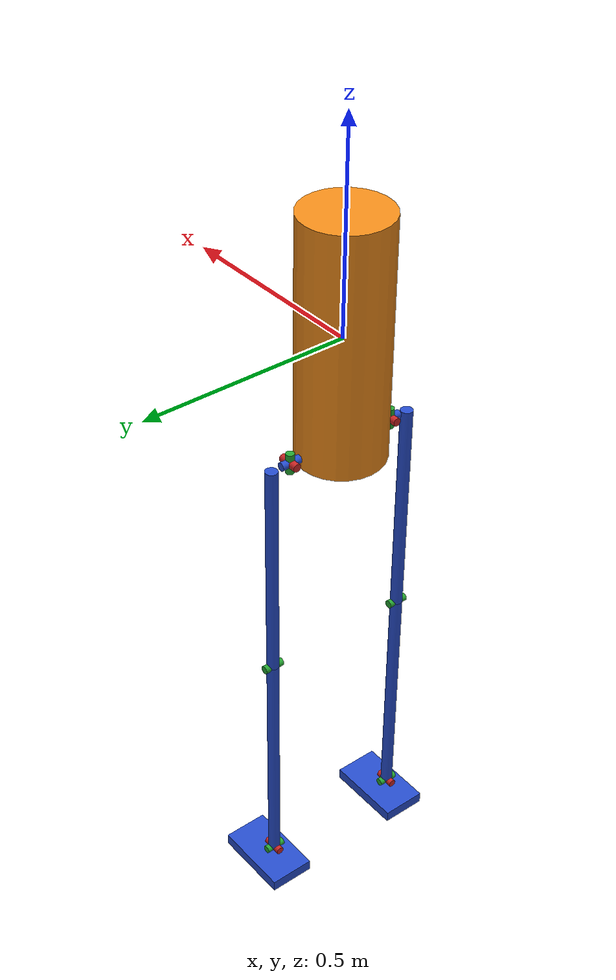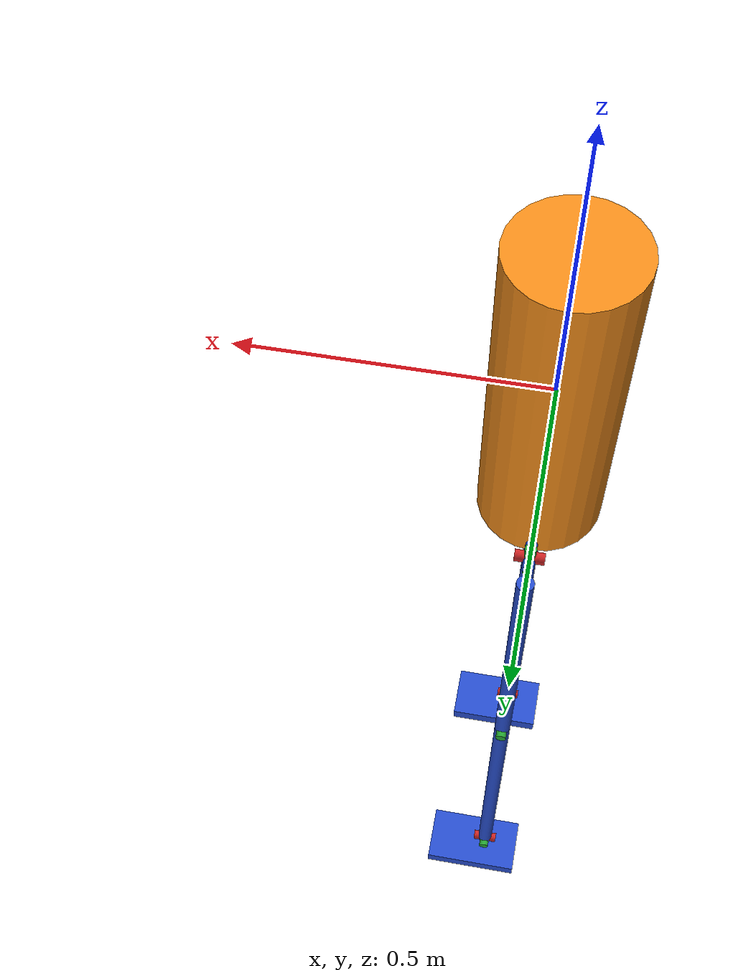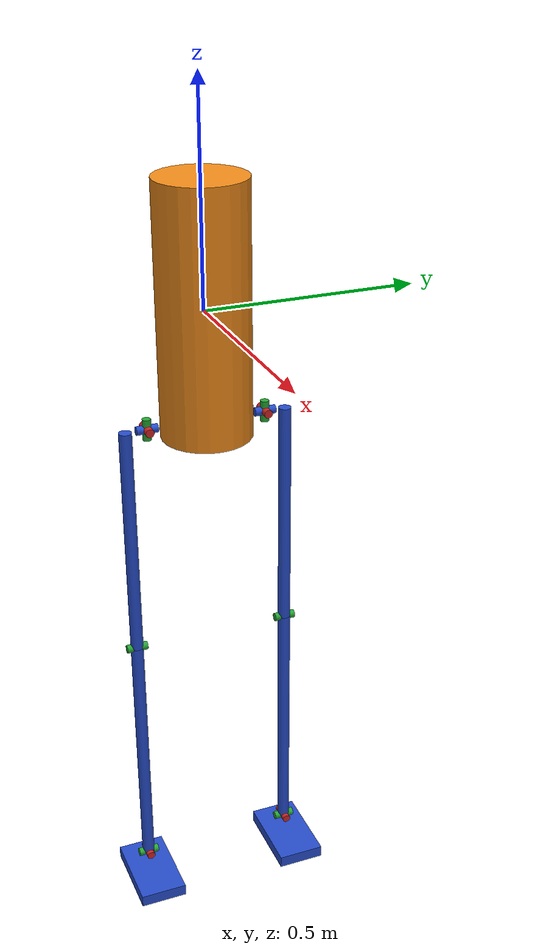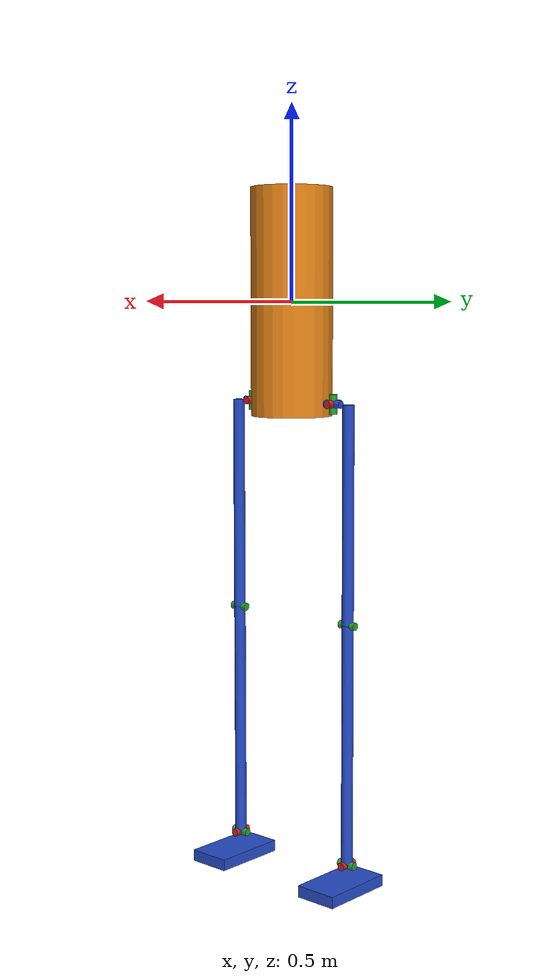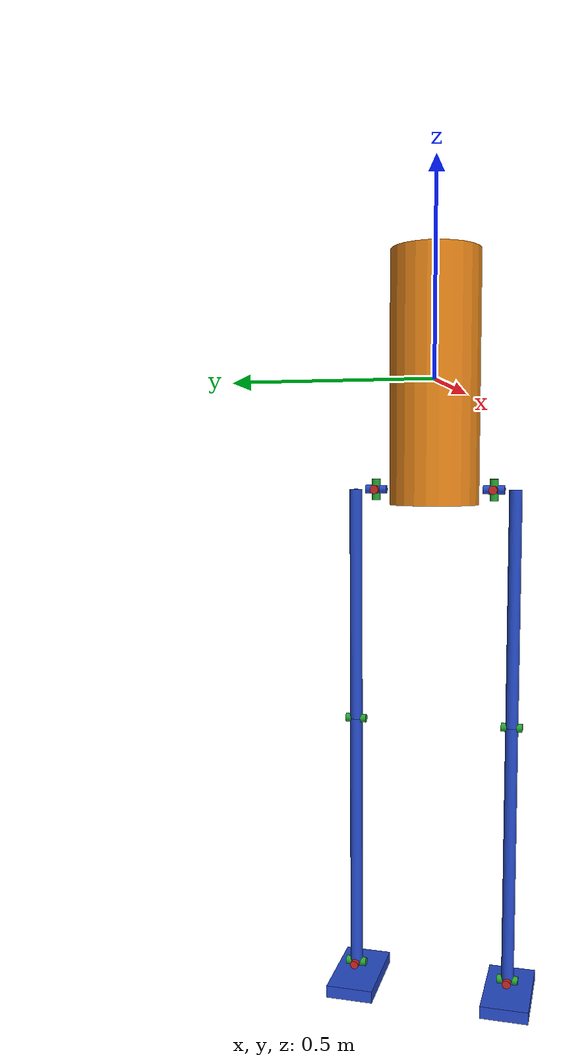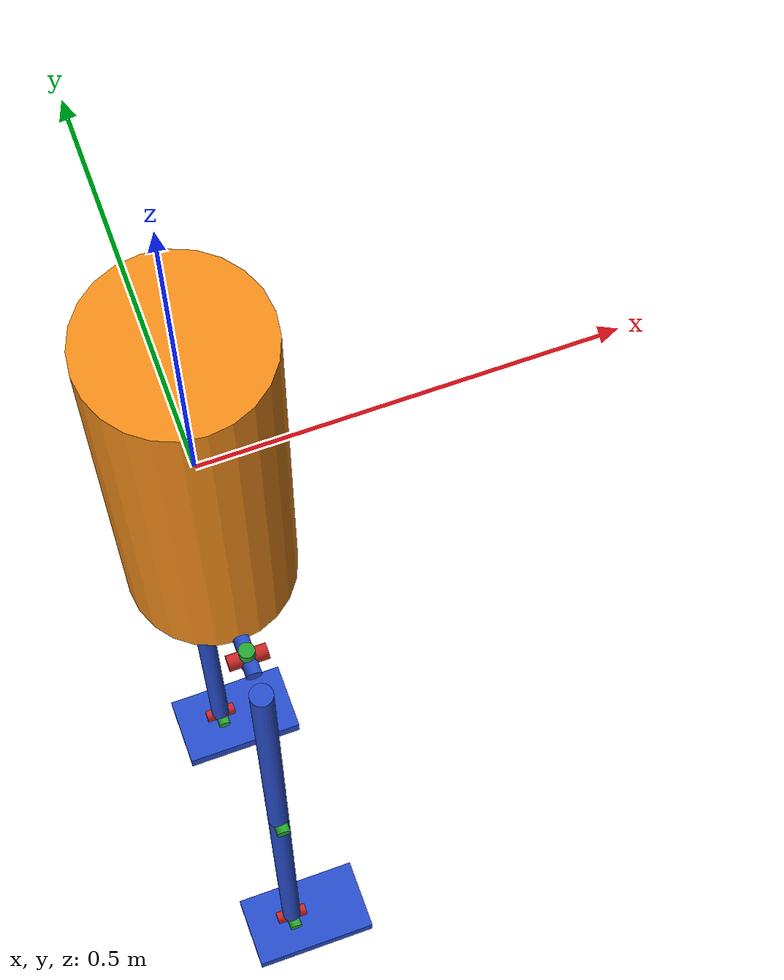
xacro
<?xml version="1.0"?>
<robot name="robotao" xmlns:xacro="http://www.ros.org/wiki/xacro">

<!--
Remember:
- Zero is in the center of the object
- Hip has auxialiary links to simulate a spherical joint

-->

<!-- Import all Gazebo elements: controllers and colors -->
<xacro:include filename="$(find robotao_description)/urdf/robotao.gazebo" />

<!-- Parameters -->
<xacro:property name="pi" value="3.141592654"/>

<!-- Axis definition

    +X - pointing foward from the robot
    +Y - pointing leftward of the robot
    +Z - pointing upward from the robot

-->

<!-- Parameters of the robot in meters -->
<xacro:property name="drop_point" value="1.48"/>                    <!-- w.r.t the center of the Z axis of the torso -->

<xacro:property name="torso_height" value="0.58"/>
<xacro:property name="torso_radius" value="0.105"/>
<xacro:property name="hip_to_torso_offset_y" value="0.035"/>        <!-- offset from the side of the torso -->
<xacro:property name="hip_to_torso_offset_z" value="0.035"/>         <!-- offset from the butt of the torso -->
<xacro:property name="hip_to_leg_offset_y" value="0.05"/>           <!-- offset from the side of the leg -->
<xacro:property name="carbon_pipe_radius" value="0.015"/>
<xacro:property name="upper_leg_height" value="0.56"/>
<xacro:property name="lower_leg_height" value="0.63"/>
<xacro:property name="ankle_to_foot_offset_x" value="0.025"/>         <!-- offset from the center of the foot -->
<xacro:property name="ankle_to_foot_offset_z" value="0.05"/>
<xacro:property name="foot_height" value="0.03"/>
<xacro:property name="foot_width" value="0.115"/>
<xacro:property name="foot_length" value="0.2"/>

<!--
    =====================================================
                            Macro
    =====================================================
-->
<xacro:macro name="insert_transmission" params="join_name">
    <transmission name="${join_name}_tran">
        <type>transmission_interface/SimpleTransmission</type>
        <joint name="${join_name}">
            <hardwareInterface>EffortJointInterface</hardwareInterface>
        </joint>

        <actuator name="${join_name}_motor">
            <hardwareInterface>EffortJointInterface</hardwareInterface>
            <mechanicalReduction>1</mechanicalReduction>
        </actuator>
    </transmission>
</xacro:macro>

<xacro:macro name="leg" params="parent prefix reflect">
    <!-- Links -->
    <link name="${prefix}_hip_aux_link_1">
        <visual>
            <origin xyz="0 0 0" rpy="${pi*0.5} 0 0"/>
            <geometry>
                <cylinder radius="0.01" length="0.05" />
            </geometry>
        </visual>

        <inertial>
            <origin xyz="-0.007 0.000 0.109" rpy="0 0 0"/>
            <mass value="5.383"/>
            <inertia ixx="1.0" ixy="0.0" ixz="0.0" iyy="1.0" iyz="0.0" izz="1.0" />
        </inertial>
    </link>

    <link name="${prefix}_hip_aux_link_2">
        <visual>
            <origin xyz="0 0 0" rpy="0 ${pi*0.5} 0"/>
            <geometry>
                <cylinder radius="0.01" length="0.05" />
            </geometry>
        </visual>

        <inertial>
            <origin xyz="-0.007 0.000 0.109" rpy="0 0 0"/>
            <mass value="5.383"/>
            <inertia ixx="1.0" ixy="0.0" ixz="0.0" iyy="1.0" iyz="0.0" izz="1.0" />
        </inertial>
    </link>

    <link name="${prefix}_hip_aux_link_3">
        <visual>
            <origin xyz="0 0 0" rpy="0 0 ${pi*0.5}"/>
            <geometry>
                <cylinder radius="0.01" length="0.05" />
            </geometry>
        </visual>

        <inertial>
            <origin xyz="-0.007 0.000 0.109" rpy="0 0 0"/>
            <mass value="5.383"/>
            <inertia ixx="1.0" ixy="0.0" ixz="0.0" iyy="1.0" iyz="0.0" izz="1.0" />
        </inertial>
    </link>

    <link name="${prefix}_upper_leg">
        <visual>
            <origin xyz="0 0 0" rpy="0 0 0"/>
            <geometry>
                <cylinder radius="${carbon_pipe_radius}" length="${upper_leg_height}"/>
            </geometry>
        </visual>

        <inertial>
            <origin xyz="0 0 0" rpy="0 0 0"/>
            <mass value="5.383"/>
            <inertia ixx="1.0" ixy="0.0" ixz="0.0" iyy="1.0" iyz="0.0" izz="1.0" />
        </inertial>
    </link>

    <link name="${prefix}_knee_aux_link_1">
        <visual>
            <origin xyz="0 0 0" rpy="${pi*0.5} 0 0"/>
            <geometry>
                <cylinder radius="0.01" length="0.05" />
            </geometry>
        </visual>

        <inertial>
            <origin xyz="-0.007 0.000 0.109" rpy="0 0 0"/>
            <mass value="5.383"/>
            <inertia ixx="1.0" ixy="0.0" ixz="0.0" iyy="1.0" iyz="0.0" izz="1.0" />
        </inertial>
    </link>

    <link name="${prefix}_lower_leg">
        <visual>
            <origin xyz="0 0 0" rpy="0 0 0"/>
            <geometry>
                <cylinder radius="${carbon_pipe_radius}" length="${lower_leg_height}"/>
            </geometry>
        </visual>

        <inertial>
            <origin xyz="0 0 0" rpy="0 0 0"/>
            <mass value="5.383"/>
            <inertia ixx="1.0" ixy="0.0" ixz="0.0" iyy="1.0" iyz="0.0" izz="1.0" />
        </inertial>
    </link>

    <link name="${prefix}_ankle_aux_link_1">
        <visual>
            <origin xyz="0 0 0" rpy="${pi*0.5} 0 0"/>
            <geometry>
                <cylinder radius="0.01" length="0.05" />
            </geometry>
        </visual>

        <inertial>
            <origin xyz="-0.007 0.000 0.109" rpy="0 0 0"/>
            <mass value="5.383"/>
            <inertia ixx="1.0" ixy="0.0" ixz="0.0" iyy="1.0" iyz="0.0" izz="1.0" />
        </inertial>
    </link>

    <link name="${prefix}_ankle_aux_link_2">
        <visual>
            <origin xyz="0 0 0" rpy="0 ${pi*0.5} 0"/>
            <geometry>
                <cylinder radius="0.01" length="0.05" />
            </geometry>
        </visual>

        <inertial>
            <origin xyz="-0.007 0.000 0.109" rpy="0 0 0"/>
            <mass value="5.383"/>
            <inertia ixx="1.0" ixy="0.0" ixz="0.0" iyy="1.0" iyz="0.0" izz="1.0" />
        </inertial>
    </link>

    <link name="${prefix}_foot">
        <visual>
            <origin xyz="0 0 0" rpy="0 0 0"/>
            <geometry>
                <box size="${foot_length} ${foot_width} ${foot_height}" rpy="0 0 0"/>
            </geometry>
        </visual>

        <collision>
            <origin xyz="0 0 0" rpy="0 0 0"/>
            <geometry>
                <box size="${foot_length} ${foot_width} ${foot_height}" rpy="0 0 0"/>
            </geometry>
        </collision>

        <inertial>
            <origin xyz="0 0 0" rpy="0 0 0"/>
            <mass value="5.383"/>
            <inertia ixx="1.0" ixy="0.0" ixz="0.0" iyy="1.0" iyz="0.0" izz="1.0" />
        </inertial>
    </link>

    <!-- Joints -->
    <!-- 3DOF of the hip of the robot, it will simulate the behavior of the mechanism of the real robot -->
    <joint name="${prefix}_hip_pitch" type="revolute">
        <axis xyz="0 1 0" />
        <parent link="${parent}"/>
        <child  link="${prefix}_hip_aux_link_1"/>
        <origin xyz="0  ${reflect*(torso_radius+hip_to_torso_offset_y)} ${-torso_height/2+hip_to_torso_offset_z}" rpy="0 0 0" />
        <limit velocity="6.5" effort="1000" lower="${-pi*0.2}" upper="${pi*0.3}" />
        <dynamics damping="0.1" friction="0.0" />
    </joint>
    <xacro:insert_transmission join_name="${prefix}_hip_pitch"/>

    <joint name="${prefix}_hip_roll" type="revolute">
        <axis xyz="1 0 0" />
        <parent link="${prefix}_hip_aux_link_1"/>
        <child  link="${prefix}_hip_aux_link_2"/>
        <origin xyz="0 0 0" rpy="0 0 0" />
        <limit velocity="6.5" effort="1000" lower="${-pi*0.2}" upper="${pi*0.3}" />
        <dynamics damping="0.1" friction="0.0" />
    </joint>
    <xacro:insert_transmission join_name="${prefix}_hip_roll"/>

    <joint name="${prefix}_hip_yaw" type="revolute">
        <axis xyz="0 0 1" />
        <parent link="${prefix}_hip_aux_link_2"/>
        <child  link="${prefix}_hip_aux_link_3"/>
        <origin xyz="0 0 0" rpy="0 0 0" />
        <limit velocity="6.5" effort="1000" lower="${-pi*0.2}" upper="${pi*0.3}" />
        <dynamics damping="0.1" friction="0.0" />
    </joint>
    <xacro:insert_transmission join_name="${prefix}_hip_yaw"/>

    <!-- fake joint that connect the hip with the upper leg through the aux_links -->
    <joint name="${prefix}_hip_to_leg" type="fixed">
        <parent link="${prefix}_hip_aux_link_3"/>
        <child  link="${prefix}_upper_leg"/>
        <origin xyz="0 ${reflect*hip_to_leg_offset_y} ${-upper_leg_height/2}" rpy="0 0 0" />
    </joint>

    <!-- 1DOF of the knee of the robot, it will simulate the behavior of the mechanism of the real robot -->
    <joint name="${prefix}_knee_pitch" type="revolute">
        <axis xyz="0 1 0" />
        <parent link="${prefix}_upper_leg"/>
        <child  link="${prefix}_knee_aux_link_1"/>
        <origin xyz="0 0 ${-upper_leg_height/2}" rpy="0 0 0" />
        <limit velocity="6.5" effort="1000" lower="${-pi*0.2}" upper="${pi*0.3}" />
        <dynamics damping="0.1" friction="0.0" />
    </joint>
    <xacro:insert_transmission join_name="${prefix}_knee_pitch"/>

    <!-- fake joint that connect the upper leg with the lower leg through the aux_links -->
    <joint name="${prefix}_upper_to_lower_leg" type="fixed">
        <parent link="${prefix}_knee_aux_link_1"/>
        <child  link="${prefix}_lower_leg"/>
        <origin xyz="0 0 ${-lower_leg_height/2}" rpy="0 0 0" />
    </joint>

    <!-- 2DOF of the ankle of the robot, it will simulate the behavior of the mechanism of the real robot -->
    <joint name="${prefix}_ankle_pitch" type="revolute">
        <axis xyz="0 1 0" />
        <parent link="${prefix}_lower_leg"/>
        <child  link="${prefix}_ankle_aux_link_1"/>
        <origin xyz="0 0 ${-lower_leg_height/2}" rpy="0 0 0" />
        <limit velocity="6.5" effort="1000" lower="${-pi*0.2}" upper="${pi*0.3}" />
        <dynamics damping="0.1" friction="0.0" />
    </joint>
    <xacro:insert_transmission join_name="${prefix}_ankle_pitch"/>

    <joint name="${prefix}_ankle_roll" type="revolute">
        <axis xyz="1 0 0" />
        <parent link="${prefix}_ankle_aux_link_1"/>
        <child  link="${prefix}_ankle_aux_link_2"/>
        <origin xyz="0 0 0" rpy="0 0 0" />
        <limit velocity="6.5" effort="1000" lower="${-pi*0.2}" upper="${pi*0.3}" />
        <dynamics damping="0.1" friction="0.0" />
    </joint>
    <xacro:insert_transmission join_name="${prefix}_ankle_roll"/>

    <!-- fake joint that connect the lower leg with the foot through the aux_links -->
    <joint name="${prefix}_leg_to_foot" type="fixed">
        <parent link="${prefix}_ankle_aux_link_2"/>
        <child  link="${prefix}_foot"/>
        <origin xyz="${ankle_to_foot_offset_x} 0 ${-ankle_to_foot_offset_z}" rpy="0 0 0" />
    </joint>

</xacro:macro>

<!--
    =====================================================
                        Base link
    =====================================================
-->

<!-- TORSO -->
<link name="torso_link">
    <visual>
        <origin xyz="0 0 0" rpy="0 0 0"/>
        <geometry>
            <cylinder radius="${torso_radius}" length="${torso_height}" />
        </geometry>
    </visual>

    <collision>
        <origin xyz="0 0 0" rpy="0 0 0"/>
        <geometry>
            <cylinder radius="${torso_radius}" length="${torso_height}" />
        </geometry>
    </collision>

    <inertial>
        <origin xyz="0 0 0" rpy="0 0 0"/>
        <mass value="5.383"/>
        <inertia ixx="1.0" ixy="0.0" ixz="0.0" iyy="1.0" iyz="0.0" izz="1.0" />
    </inertial>
</link>

<!-- Freeze the robot in place -->
<gazebo>
    <static> false </static>
</gazebo>

<xacro:leg prefix="left" reflect="1" parent="torso_link"/>
<xacro:leg prefix="right" reflect="-1" parent="torso_link"/>

</robot>
